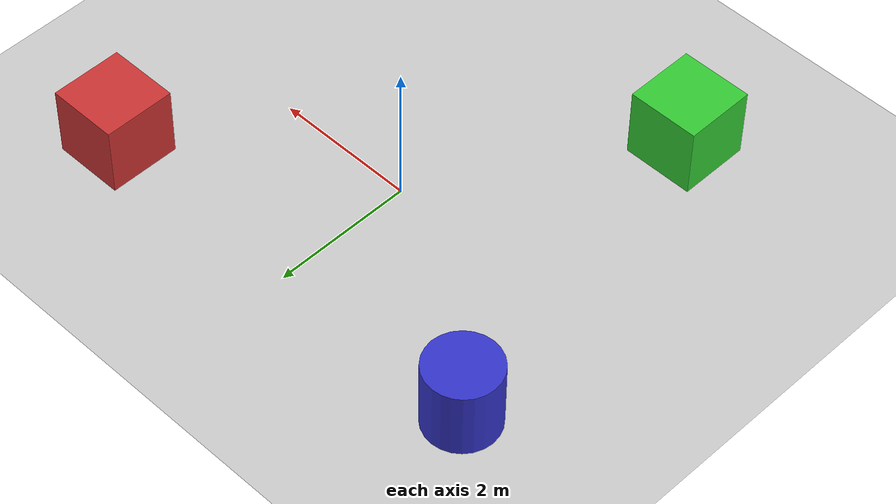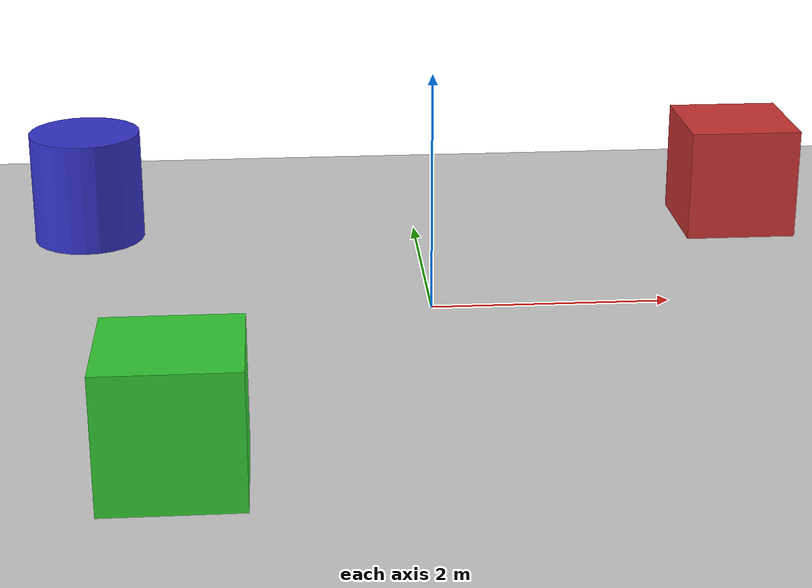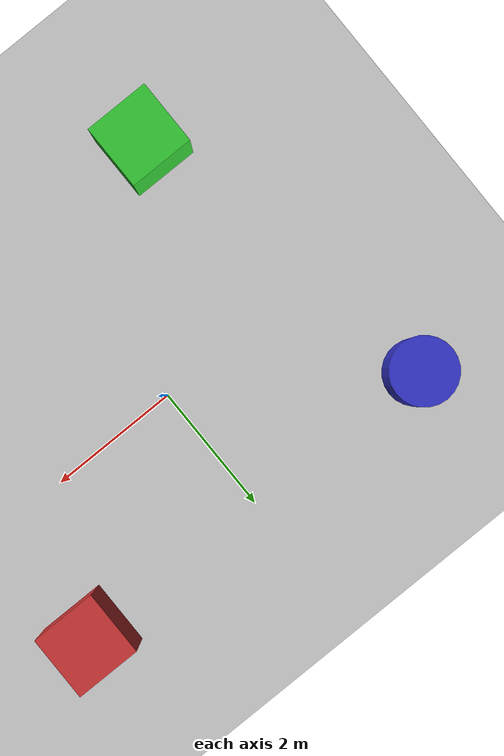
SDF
<?xml version="1.0"?>
<sdf version="1.6">
  <world name="default">

    <!-- A global light source -->
    <include>
      <uri>model://sun</uri>
    </include>

    <!-- A ground plane -->
    <include>
      <uri>model://ground_plane</uri>
    </include>

    <!-- Physics settings -->
    <physics type="ode">
      <real_time_update_rate>1000.0</real_time_update_rate>
      <max_step_size>0.001</max_step_size>
      <real_time_factor>1</real_time_factor>
    </physics>

    <!-- Some obstacles for testing sensors -->
    <model name="box_obstacle_1">
      <pose>3 2 0.5 0 0 0</pose>
      <static>true</static>
      <link name="link">
        <collision name="collision">
          <geometry>
            <box>
              <size>1 1 1</size>
            </box>
          </geometry>
        </collision>
        <visual name="visual">
          <geometry>
            <box>
              <size>1 1 1</size>
            </box>
          </geometry>
          <material>
            <ambient>0.8 0.2 0.2 1</ambient>
            <diffuse>0.8 0.2 0.2 1</diffuse>
          </material>
        </visual>
      </link>
    </model>

    <model name="box_obstacle_2">
      <pose>-2 -3 0.5 0 0 0</pose>
      <static>true</static>
      <link name="link">
        <collision name="collision">
          <geometry>
            <box>
              <size>1 1 1</size>
            </box>
          </geometry>
        </collision>
        <visual name="visual">
          <geometry>
            <box>
              <size>1 1 1</size>
            </box>
          </geometry>
          <material>
            <ambient>0.2 0.8 0.2 1</ambient>
            <diffuse>0.2 0.8 0.2 1</diffuse>
          </material>
        </visual>
      </link>
    </model>

    <model name="cylinder_obstacle">
      <pose>-3 2 0.5 0 0 0</pose>
      <static>true</static>
      <link name="link">
        <collision name="collision">
          <geometry>
            <cylinder>
              <radius>0.5</radius>
              <length>1</length>
            </cylinder>
          </geometry>
        </collision>
        <visual name="visual">
          <geometry>
            <cylinder>
              <radius>0.5</radius>
              <length>1</length>
            </cylinder>
          </geometry>
          <material>
            <ambient>0.2 0.2 0.8 1</ambient>
            <diffuse>0.2 0.2 0.8 1</diffuse>
          </material>
        </visual>
      </link>
    </model>

  </world>
</sdf>
